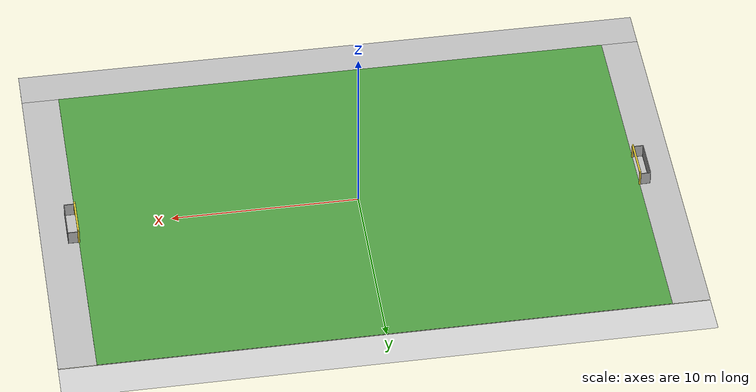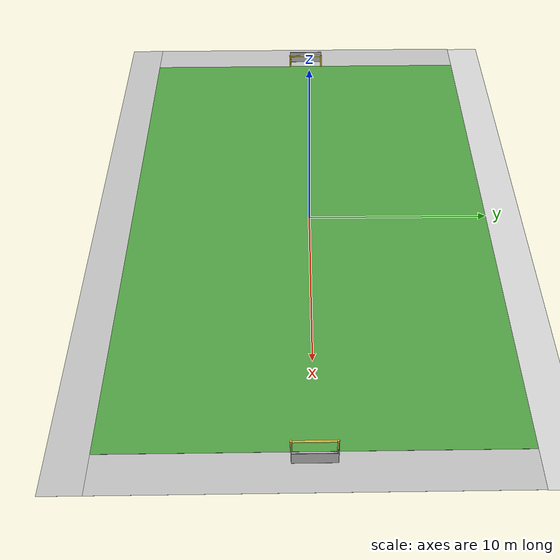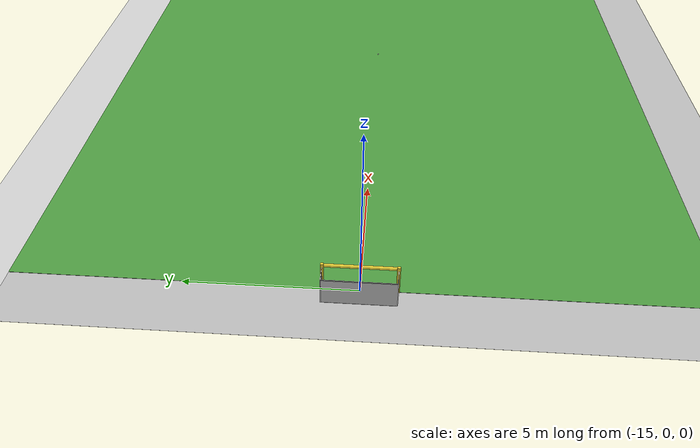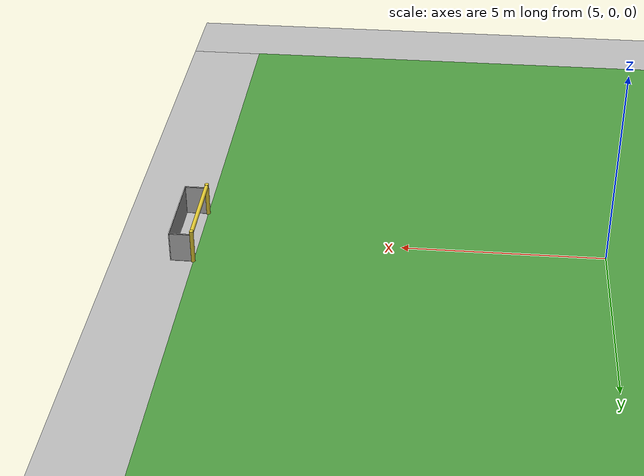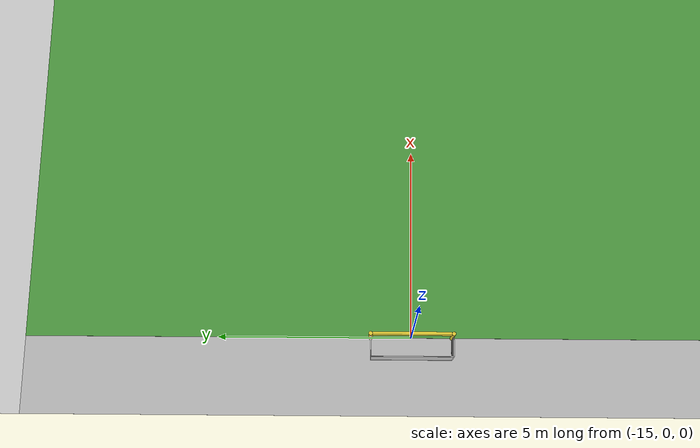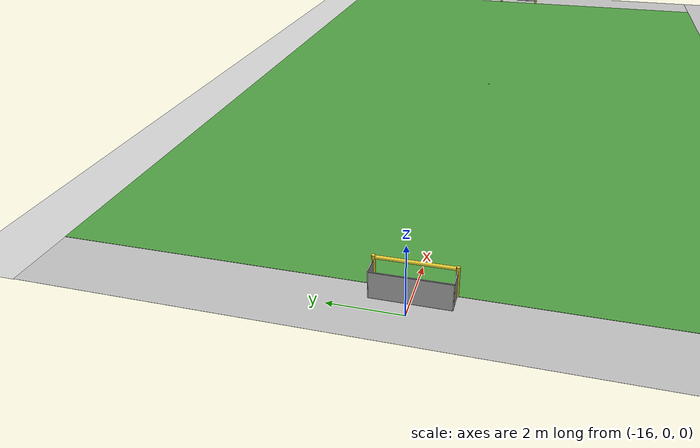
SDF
<?xml version="1.0" ?>
<sdf version="1.5">
  <world name="default">

    <physics type="ode">
      <max_step_size>0.001</max_step_size>
	  <real_time_update_rate>1000</real_time_update_rate>
    </physics>

    <!-- Remove the grid -->
    <scene>
      <grid>false</grid>
      <origin_visual>false</origin_visual>
      <sky></sky>
    </scene>

    <!-- A global light source -->
    <light type="directional" name="sun">
      <cast_shadows>true</cast_shadows>
      <pose>0 0 1000 0 0 0</pose>
      <diffuse>0.8 0.8 0.8 1</diffuse>
      <specular>0.2 0.2 0.2 1</specular>
      <attenuation>
        <range>1000</range>
        <constant>0.9</constant>
        <linear>0.01</linear>
        <quadratic>0.001</quadratic>
      </attenuation>
      <direction>-0.5 0.1 -0.9</direction>
    </light>

    <!-- RoboCup 3D simulator field -->
    <include>
      <uri>model://robocup_3Dsim_field</uri>
    </include>

    <!-- RoboCup 3D simulator left goal -->
    <include>
      <pose>-15.0 0 0 0 0 3.1416</pose>
      <uri>model://robocup_3Dsim_goal</uri>
    </include>

    <!-- RoboCup 3D simulator right goal -->
    <include>
      <pose>15.0 0 0 0 0 0</pose>
      <uri>model://robocup_3Dsim_goal</uri>
    </include>

    <!-- RoboCup 3D simulator ball -->
    <include>
      <pose>0 0 0 0 0 0</pose>
      <uri>model://robocup_3Dsim_ball</uri>
    </include>

    <!-- Load the plugin for Razer Hydra -->

    <plugin name="robocup3dplugin" filename="librobocup3dsPlugin.so">
    </plugin>
    <gui fullscreen='0'>
      <plugin name="robocup3dGUIplugin" filename="librobocup3dsGUIPlugin.so">
      </plugin>
    </gui>
  </world>
</sdf>

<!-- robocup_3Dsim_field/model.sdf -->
<sdf version="1.5">
  <model name="robocup_3d_field">
    <static>true</static>
    <link name="field">
      <pose>0 0 0.01 0 0 0</pose>
      <collision name="collision">
        <geometry>
          <plane>
            <normal>0 0 1</normal>
            <size>30.0 20.0</size>
          </plane>
        </geometry>
        <surface>
          <friction>
            <ode>
              <mu>100</mu>
              <mu2>50</mu2>
            </ode>
          </friction>
        </surface>
      </collision>
      <visual name="base1">
        <pose>0 11 0.001 0 0 0</pose>
        <cast_shadows>false</cast_shadows>
        <geometry>
          <plane>
            <normal>0 0 1</normal>
            <size>34.0 2.0</size>
          </plane>
        </geometry>
        <material>
          <script>
            <uri>model://../model_source/models/robocup_3Dsim_field/materials/scripts/</uri>
            <uri>model://../model_source/models/robocup_3Dsim_field/materials/textures/</uri>
            <name>RoboCup/FieldBorder</name>
          </script>
        </material>
      </visual>
      <visual name="base2">
        <pose>0 -11 0.001 0 0 0</pose>
        <cast_shadows>false</cast_shadows>
        <geometry>
          <plane>
            <normal>0 0 1</normal>
            <size>34.0 2.0</size>
          </plane>
        </geometry>
        <material>
          <script>
            <uri>model://../model_source/models/robocup_3Dsim_field/materials/scripts/</uri>
            <uri>model://../model_source/models/robocup_3Dsim_field/materials/textures/</uri>
            <name>RoboCup/FieldBorder</name>
          </script>
        </material>
      </visual>
      <visual name="base3">
        <pose>16 0 0.001 0 0 0</pose>
        <cast_shadows>false</cast_shadows>
        <geometry>
          <plane>
            <normal>0 0 1</normal>
            <size>2.0 20.0</size>
          </plane>
        </geometry>
        <material>
          <script>
            <uri>model://../model_source/models/robocup_3Dsim_field/materials/scripts/</uri>
            <uri>model://../model_source/models/robocup_3Dsim_field/materials/textures/</uri>
            <name>RoboCup/FieldBorder</name>
          </script>
        </material>
      </visual>
      <visual name="base4">
        <pose>-16 0 0.001 0 0 0</pose>
        <cast_shadows>false</cast_shadows>
        <geometry>
          <plane>
            <normal>0 0 1</normal>
            <size>2.0 20.0</size>
          </plane>
        </geometry>
        <material>
          <script>
            <uri>model://../model_source/models/robocup_3Dsim_field/materials/scripts/</uri>
            <uri>model://../model_source/models/robocup_3Dsim_field/materials/textures/</uri>
            <name>RoboCup/FieldBorder</name>
          </script>
        </material>
      </visual>
      <visual name="carpet">
        <cast_shadows>false</cast_shadows>
        <geometry>
          <plane>
            <normal>0 0 1</normal>
            <size>30.0 20.0</size>
          </plane>
        </geometry>
        <material>
          <script>
            <uri>model://../model_source/models/robocup_3Dsim_field/materials/scripts/</uri>
            <uri>model://../model_source/models/robocup_3Dsim_field/materials/textures/</uri>
            <name>RoboCup/Grass</name>
          </script>
        </material>
      </visual>
    </link>
  </model>
</sdf>

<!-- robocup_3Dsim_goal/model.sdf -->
<sdf version="1.5">
  <model name="robocup_3d_goal">
    <static>true</static>
    <link name="left_post">
      <pose>0 1.05 0.45 0 0 0</pose>
      <collision name="collision">
        <geometry>
          <cylinder>
            <radius>0.05</radius>
            <length>0.9</length>
          </cylinder>
        </geometry>
      </collision>
      <visual name="visual">
        <geometry>
          <cylinder>
            <radius>0.05</radius>
            <length>0.9</length>
          </cylinder>
        </geometry>
        <material>
          <script>
            <uri>file://media/materials/scripts/gazebo.material</uri>
            <name>Gazebo/ZincYellow</name>
          </script>
        </material>
      </visual>
    </link>
    <link name="left_support_horiz_lower">
      <pose>0.30 1.05 0.01 0 0 0</pose>
      <collision name="collision">
        <geometry>
          <box>
            <size>0.50 0.02 0.02</size>
          </box>
        </geometry>
      </collision>
      <visual name="visual">
        <geometry>
          <box>
            <size>0.50 0.02 0.02</size>
          </box>
        </geometry>
        <material>
          <script>
            <uri>file://media/materials/scripts/gazebo.material</uri>
            <name>Gazebo/White</name>
          </script>
        </material>
      </visual>
    </link>
    <link name="left_support_horiz_upper">
      <pose>0.30 1.05 0.79 0 0 0</pose>
      <collision name="collision">
        <geometry>
          <box>
            <size>0.50 0.02 0.02</size>
          </box>
        </geometry>
      </collision>
      <visual name="visual">
        <geometry>
          <box>
            <size>0.50 0.02 0.02</size>
          </box>
        </geometry>
        <material>
          <script>
            <uri>file://media/materials/scripts/gazebo.material</uri>
            <name>Gazebo/White</name>
          </script>
        </material>
      </visual>
    </link>
    <link name="left_support_vertical">
      <pose>0.56 1.05 0.4 0 1.5708 0</pose>
      <collision name="collision">
        <geometry>
          <box>
            <size>0.80 0.02 0.02</size>
          </box>
        </geometry>
      </collision>
      <visual name="visual">
        <geometry>
          <box>
            <size>0.80 0.02 0.02</size>
          </box>
        </geometry>
        <material>
          <script>
            <uri>file://media/materials/scripts/gazebo.material</uri>
            <name>Gazebo/White</name>
          </script>
        </material>
      </visual>
    </link>
    <link name="right_support_horiz_lower">
      <pose>0.30 -1.05 0.01 0 0 0</pose>
      <collision name="collision">
        <geometry>
          <box>
            <size>0.50 0.02 0.02</size>
          </box>
        </geometry>
      </collision>
      <visual name="visual">
        <geometry>
          <box>
            <size>0.50 0.02 0.02</size>
          </box>
        </geometry>
        <material>
          <script>
            <uri>file://media/materials/scripts/gazebo.material</uri>
            <name>Gazebo/White</name>
          </script>
        </material>
      </visual>
    </link>
    <link name="right_support_horiz_upper">
      <pose>0.30 -1.05 0.79 0 0 0</pose>
      <collision name="collision">
        <geometry>
          <box>
            <size>0.50 0.02 0.02</size>
          </box>
        </geometry>
      </collision>
      <visual name="visual">
        <geometry>
          <box>
            <size>0.50 0.02 0.02</size>
          </box>
        </geometry>
        <material>
          <script>
            <uri>file://media/materials/scripts/gazebo.material</uri>
            <name>Gazebo/White</name>
          </script>
        </material>
      </visual>
    </link>
    <link name="right_support_vertical">
      <pose>0.56 -1.05 0.4 0 1.5708 0</pose>
      <collision name="collision">
        <geometry>
          <box>
            <size>0.80 0.02 0.02</size>
          </box>
        </geometry>
      </collision>
      <visual name="visual">
        <geometry>
          <box>
            <size>0.80 0.02 0.02</size>
          </box>
        </geometry>
        <material>
          <script>
            <uri>file://media/materials/scripts/gazebo.material</uri>
            <name>Gazebo/White</name>
          </script>
        </material>
      </visual>
    </link>
    <link name="center_support_horiz_lower">
      <pose>0.56 0 0.01 0 1.5708 0</pose>
      <collision name="collision">
        <geometry>
          <box>
            <size>0.02 2.08 0.02</size>
          </box>
        </geometry>
      </collision>
      <visual name="visual">
        <geometry>
          <box>
            <size>0.02 2.08 0.02</size>
          </box>
        </geometry>
        <material>
          <script>
            <uri>file://media/materials/scripts/gazebo.material</uri>
            <name>Gazebo/White</name>
          </script>
        </material>
      </visual>
    </link>
    <link name="center_support_horiz_upper">
      <pose>0.56 0 0.79 0 1.5708 0</pose>
      <collision name="collision">
        <geometry>
          <box>
            <size>0.02 2.08 0.02</size>
          </box>
        </geometry>
      </collision>
      <visual name="visual">
        <geometry>
          <box>
            <size>0.02 2.08 0.02</size>
          </box>
        </geometry>
        <material>
          <script>
            <uri>file://media/materials/scripts/gazebo.material</uri>
            <name>Gazebo/White</name>
          </script>
        </material>
      </visual>
    </link>
    <link name="right_post">
      <pose>0 -1.05 0.45 0 0 0</pose>
      <collision name="collision">
        <geometry>
          <cylinder>
            <radius>0.05</radius>
            <length>0.9</length>
          </cylinder>
        </geometry>
      </collision>
      <visual name="visual">
        <geometry>
          <cylinder>
            <radius>0.05</radius>
            <length>0.9</length>
          </cylinder>
        </geometry>
        <material>
          <script>
            <uri>file://media/materials/scripts/gazebo.material</uri>
            <name>Gazebo/ZincYellow</name>
          </script>
        </material>
      </visual>
    </link>
    <link name="crossbar">
      <pose>0 0 0.85 1.57 1.57 0</pose>
      <collision name="collision">
        <geometry>
          <cylinder>
            <radius>0.05</radius>
            <length>2.0</length>
          </cylinder>
        </geometry>
      </collision>
      <visual name="visual">
        <geometry>
          <cylinder>
            <radius>0.05</radius>
            <length>2.0</length>
          </cylinder>
        </geometry>
        <material>
          <script>
            <uri>file://media/materials/scripts/gazebo.material</uri>
            <name>Gazebo/ZincYellow</name>
          </script>
        </material>
      </visual>
    </link>
    <link name="center_net">
      <pose>0.56 0 0.40 0 0 0</pose>
      <collision name="collision">
        <geometry>
          <box>
            <size>0.01 2.1 0.80</size>
          </box>
        </geometry>
      </collision>
      <visual name="visual">
        <geometry>
          <box>
            <size>0.01 2.1 0.80</size>
          </box>
        </geometry>
        <material>
          <script>
            <uri>model://../model_source/models/robocup09_spl_field/materials/scripts/</uri>
            <uri>model://../model_source/models/robocup09_spl_field/materials/textures/</uri>
            <name>RoboCup/Net</name>
          </script>
        </material>
      </visual>
    </link>
    <link name="left_net">
      <pose>0.30 1.05 0.40 0 0 0</pose>
      <collision name="collision">
        <geometry>
          <box>
            <size>0.50 0.01 0.76</size>
          </box>
        </geometry>
      </collision>
      <visual name="visual">
        <geometry>
          <box>
            <size>0.50 0.01 0.76</size>
          </box>
        </geometry>
        <material>
          <script>
            <uri>model://../model_source/models/robocup09_spl_field/materials/scripts/</uri>
            <uri>model://../model_source/models/robocup09_spl_field/materials/textures/</uri>
            <name>RoboCup/Net</name>
          </script>
        </material>
      </visual>
    </link>
    <link name="right_net">
      <pose>0.30 -1.05 0.40 0 0 0</pose>
      <collision name="collision">
        <geometry>
          <box>
            <size>0.50 0.01 0.76</size>
          </box>
        </geometry>
      </collision>
      <visual name="visual">
        <geometry>
          <box>
            <size>0.50 0.01 0.76</size>
          </box>
        </geometry>
        <material>
          <script>
            <uri>model://../model_source/models/robocup09_spl_field/materials/scripts/</uri>
            <uri>model://../model_source/models/robocup09_spl_field/materials/textures/</uri>
            <name>RoboCup/Net</name>
          </script>
        </material>
      </visual>
    </link>
  </model>
</sdf>

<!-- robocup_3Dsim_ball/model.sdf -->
<sdf version="1.5">
  <model name="soccer_ball">
    <static>false</static>
    <link name="soccer_ball_link">
      <pose>0 0 0 0 0 0</pose>
      <inertial>
        <mass>0.026</mass>
        <!-- inertia based on solid sphere 2/5 mr^2 -->
        <inertia>
          <ixx>1.66e-6</ixx>
          <iyy>1.66e-6</iyy>
          <izz>1.66e-6</izz>
          <ixy>0</ixy>
          <ixz>0</ixz>
          <iyz>0</iyz>
        </inertia>
      </inertial>
      <collision name="collision">
        <geometry>
          <sphere>
            <radius>0.04</radius>
          </sphere>
        </geometry>
      </collision>
      <visual name="visual">
        <geometry>
          <mesh>
            <scale>0.04 0.04 0.04</scale>
            <uri>model://robocup_3Dsim_ball/meshes/ball.dae</uri>
          </mesh>
        </geometry>
      </visual>
    </link>
  </model>
</sdf>
